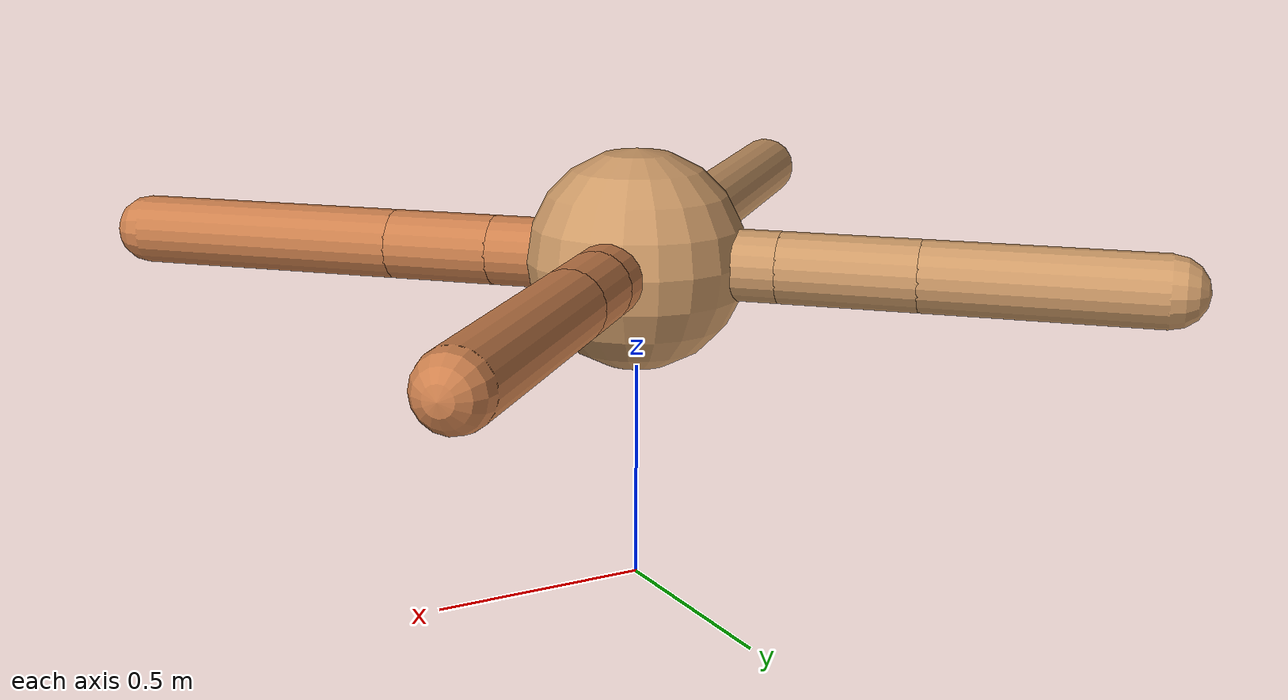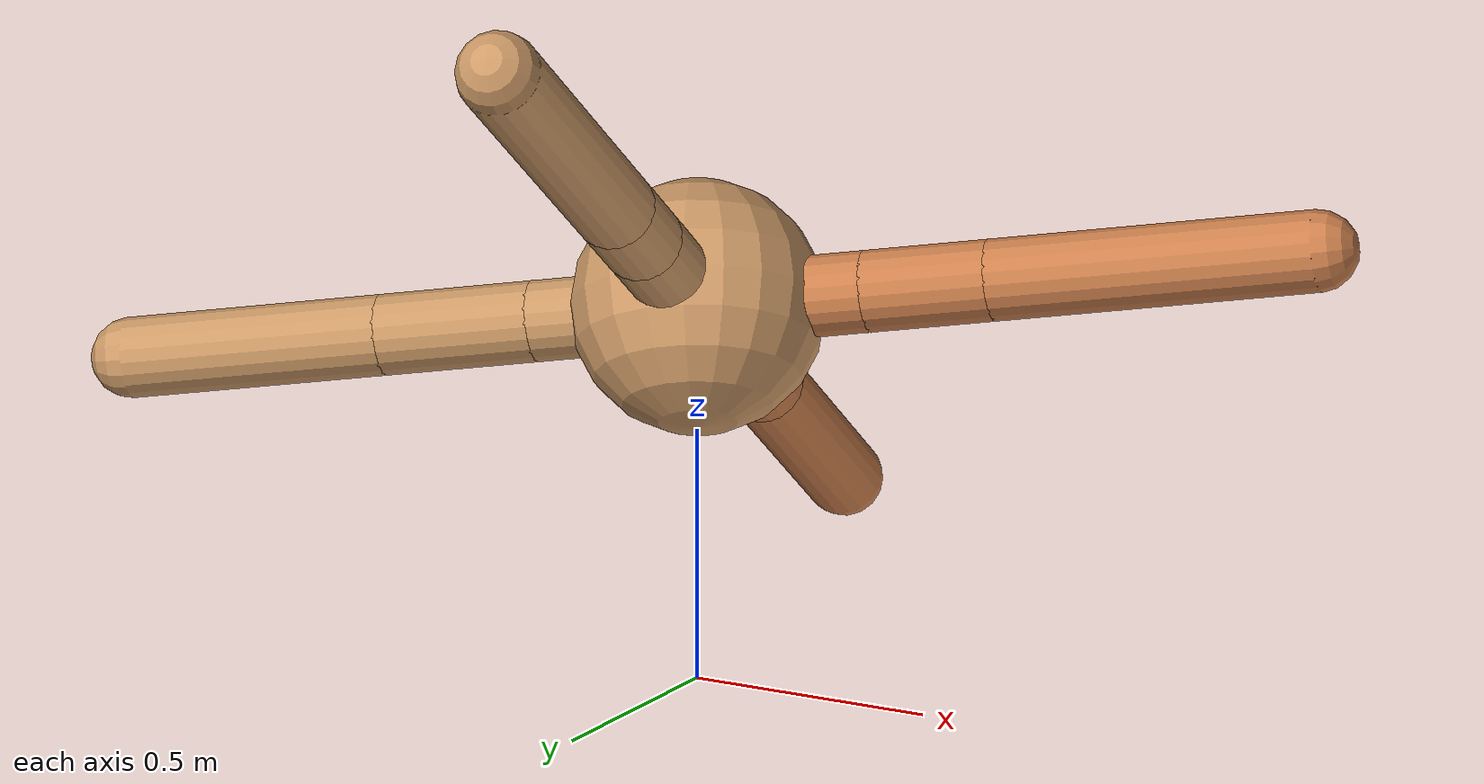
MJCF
<mujoco model="ant">
  <compiler angle="degree" coordinate="local" inertiafromgeom="true" />
  <option integrator="RK4" timestep="0.01" />
  <custom>
    <numeric data="0.0 0.0 0.55 1.0 0.0 0.0 0.0 0.0 1.0 0.0 -1.0 0.0 -1.0 0.0 1.0" name="init_qpos" />
  </custom>
  <default>
    <joint armature="1" damping="1" limited="true" />
    <geom conaffinity="0" condim="3" density="5.0" friction="1.5 0.1 0.1" margin="0.01" rgba="0.8 0.6 0.4 1" />
  </default>
  <worldbody>
    <body name="torso" pos="0 0 0.75">
      <geom name="torso_geom" pos="0 0 0" size="0.25" type="sphere" />

      <body name="front_left_leg" pos="0 0 0">
        <geom fromto="0.0 0.0 0.0 0.219748438895196 0.219748438895196 0.0" name="aux_1_geom" size="0.08" type="capsule" rgba=".8 .5 .3 1" />
        <body name="aux_1" pos="0.219748438895196 0.219748438895196 0.0">
          <joint axis="0 0 1" name="hip_1" pos="0.0 0.0 0.0" range="-40 40" type="hinge" />
          <geom fromto="0.0 0.0 0.0 0.12659090037921392 0.12659090037921392 0.0" name="left_leg_geom" size="0.08" type="capsule" rgba=".8 .5 .3 1" />
          <body pos="0.12659090037921392 0.12659090037921392 0.0" name="front_left_foot">
            <joint axis="-1 1 0" name="ankle_1" pos="0.0 0.0 0.0" range="30 100" type="hinge" />
            <geom fromto="0.0 0.0 0.0 0.4384523587936084 0.4384523587936084 0.0" name="left_ankle_geom" size="0.08" type="capsule" rgba=".8 .5 .3 1" />
          </body>
        </body>
      </body>
      <body name="front_right_leg" pos="0 0 0">
        <geom fromto="0.0 0.0 0.0 -0.23183471982856646 0.23183471982856646 0.0" name="aux_2_geom" size="0.08" type="capsule" />
        <body name="aux_2" pos="-0.23183471982856646 0.23183471982856646 0.0">
          <joint axis="0 0 1" name="hip_2" pos="0.0 0.0 0.0" range="-40 40" type="hinge" />
          <geom fromto="0.0 0.0 0.0 -0.21783324730111886 0.21783324730111886 0.0" name="right_leg_geom" size="0.08" type="capsule" />
          <body pos="-0.21783324730111886 0.21783324730111886 0.0" name="front_right_foot">
            <joint axis="1 1 0" name="ankle_2" pos="0.0 0.0 0.0" range="-100 -30" type="hinge" />
            <geom fromto="0.0 0.0 0.0 -0.36715442194538833 0.36715442194538833 0.0" name="right_ankle_geom" size="0.08" type="capsule" />
          </body>
        </body>
      </body>
      <body name="left_back_leg" pos="0 0 0">
        <geom fromto="0.0 0.0 0.0 -0.2802750855989728 -0.2802750855989728 0.0" name="aux_3_geom" size="0.08" type="capsule" />
        <body name="aux_3" pos="-0.2802750855989728 -0.2802750855989728 0.0">
          <joint axis="0 0 1" name="hip_3" pos="0.0 0.0 0.0" range="-40 40" type="hinge" />
          <geom fromto="0.0 0.0 0.0 -0.1340176700031348 -0.1340176700031348 0.0" name="back_leg_geom" size="0.08" type="capsule" />
          <body pos="-0.1340176700031348 -0.1340176700031348 0.0" name="left_back_foot">
            <joint axis="-1 1 0" name="ankle_3" pos="0.0 0.0 0.0" range="-100 -30" type="hinge" />
            <geom fromto="0.0 0.0 0.0 -0.5354284050299526 -0.5354284050299526 0.0" name="third_ankle_geom" size="0.08" type="capsule" />
          </body>
        </body>
      </body>
      <body name="right_back_leg" pos="0 0 0">
        <geom fromto="0.0 0.0 0.0 0.23917995189789112 -0.23917995189789112 0.0" name="aux_4_geom" size="0.08" type="capsule" rgba=".8 .5 .3 1" />
        <body name="aux_4" pos="0.23917995189789112 -0.23917995189789112 0.0">
          <joint axis="0 0 1" name="hip_4" pos="0.0 0.0 0.0" range="-40 40" type="hinge" />
          <geom fromto="0.0 0.0 0.0 0.17446967062011634 -0.17446967062011634 0.0" name="rightback_leg_geom" size="0.08" type="capsule" rgba=".8 .5 .3 1" />
          <body pos="0.17446967062011634 -0.17446967062011634 0.0" name="right_back_foot">
            <joint axis="1 1 0" name="ankle_4" pos="0.0 0.0 0.0" range="30 100" type="hinge" />
            <geom fromto="0.0 0.0 0.0 0.45249457485476485 -0.45249457485476485 0.0" name="fourth_ankle_geom" size="0.08" type="capsule" rgba=".8 .5 .3 1" />
          </body>
        </body>
      </body>
    </body>
  </worldbody>
  <actuator>
    <motor ctrllimited="true" ctrlrange="-1.0 1.0" joint="hip_4" gear="150" />
    <motor ctrllimited="true" ctrlrange="-1.0 1.0" joint="ankle_4" gear="150" />
    <motor ctrllimited="true" ctrlrange="-1.0 1.0" joint="hip_1" gear="150" />
    <motor ctrllimited="true" ctrlrange="-1.0 1.0" joint="ankle_1" gear="150" />
    <motor ctrllimited="true" ctrlrange="-1.0 1.0" joint="hip_2" gear="150" />
    <motor ctrllimited="true" ctrlrange="-1.0 1.0" joint="ankle_2" gear="150" />
    <motor ctrllimited="true" ctrlrange="-1.0 1.0" joint="hip_3" gear="150" />
    <motor ctrllimited="true" ctrlrange="-1.0 1.0" joint="ankle_3" gear="150" />
  </actuator>
</mujoco>
